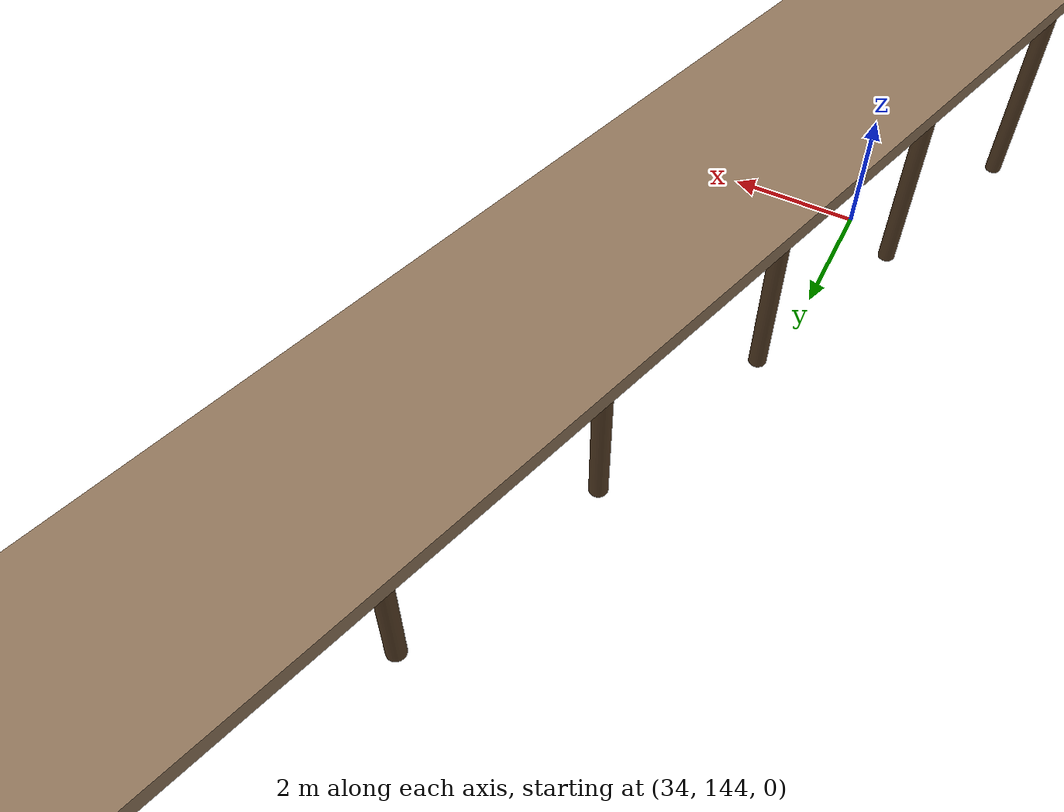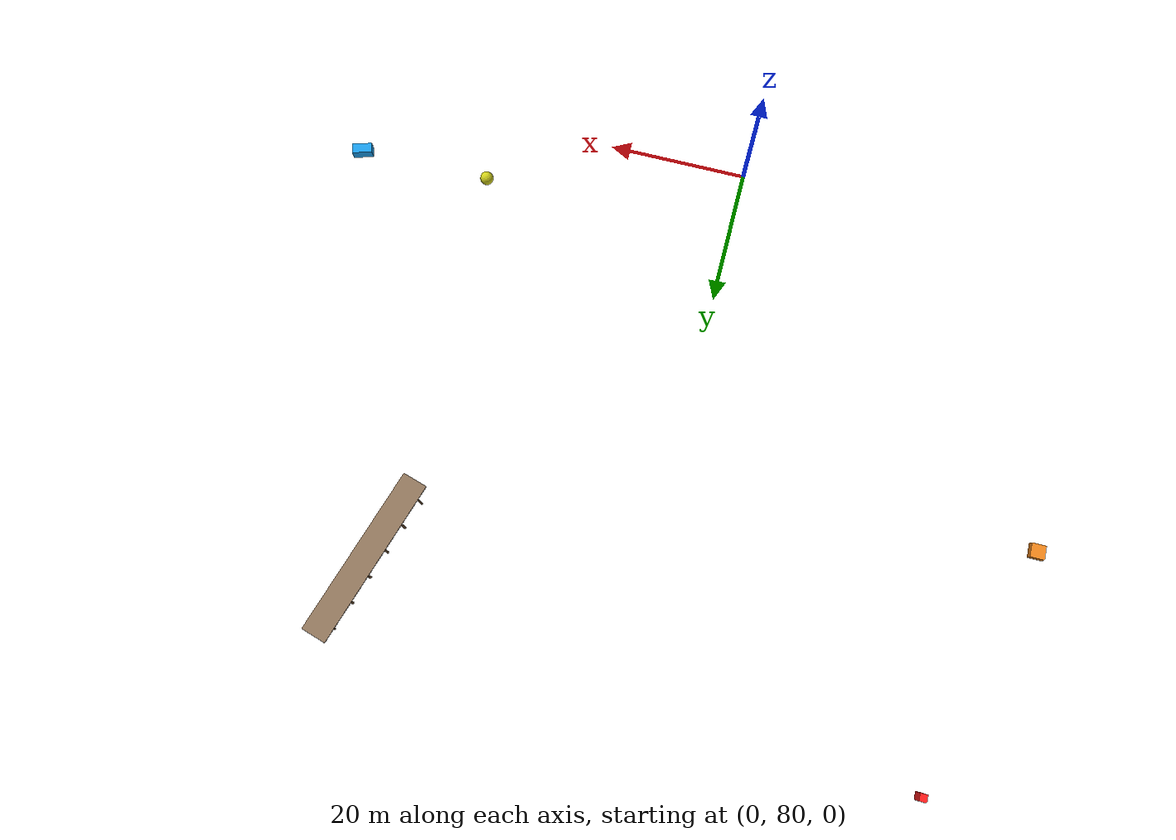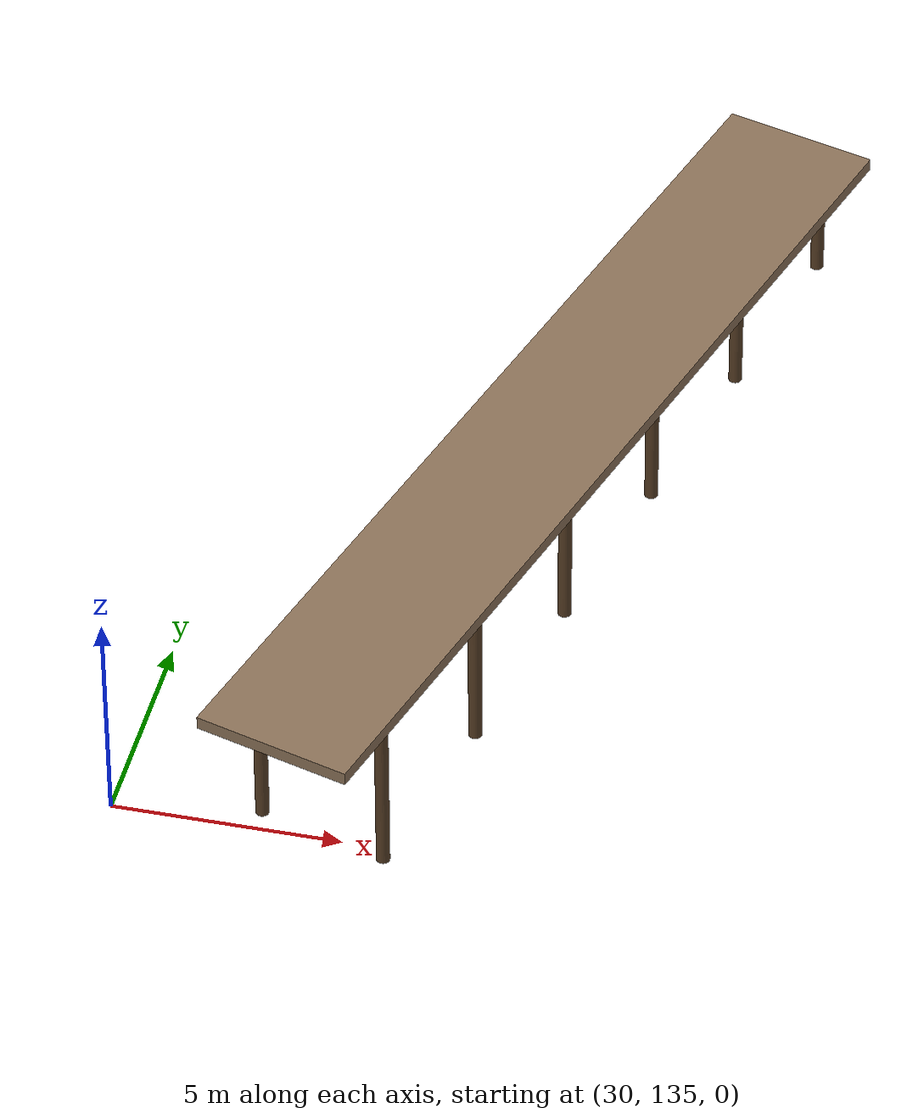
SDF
<sdf version="1.9">
 <world name="claytor_lake_calm">
  <physics name="4ms" type="dart">
   <max_step_size>0.004</max_step_size>
   <real_time_factor>1.0</real_time_factor>
  </physics>
  <plugin filename="gz-sim-physics-system" name="gz::sim::systems::Physics"/>
  <plugin filename="gz-sim-user-commands-system" name="gz::sim::systems::UserCommands"/>
  <plugin filename="gz-sim-sensors-system" name="gz::sim::systems::Sensors">
   <render_engine>ogre2</render_engine>
  </plugin>
  <plugin filename="gz-sim-imu-system" name="gz::sim::systems::Imu"/>
  <plugin filename="gz-sim-magnetometer-system" name="gz::sim::systems::Magnetometer"/>
  <plugin filename="gz-sim-forcetorque-system" name="gz::sim::systems::ForceTorque"/>
  <plugin filename="gz-sim-scene-broadcaster-system" name="gz::sim::systems::SceneBroadcaster"/>
  <plugin filename="gz-sim-contact-system" name="gz::sim::systems::Contact"/>
  <plugin filename="gz-sim-navsat-system" name="gz::sim::systems::NavSat"/>
  <scene><grid>false</grid><ambient>1.0 1.0 1.0</ambient><background>0.8 0.8 0.8</background></scene>
  <spherical_coordinates>
   <surface_model>EARTH_WGS84</surface_model>
   <world_frame_orientation>ENU</world_frame_orientation>
   <latitude_deg>37.0580000</latitude_deg>
   <longitude_deg>-80.6260000</longitude_deg>
   <elevation>257.90</elevation>
   <heading_deg>0.0</heading_deg>
  </spherical_coordinates>
  <light type="directional" name="sun">
   <pose>0 0 10 0 0 0</pose>
   <diffuse>0.8 0.8 0.8 1</diffuse>
   <specular>0.2 0.2 0.2 1</specular>
   <attenuation>
    <range>1000</range>
    <constant>0.9</constant>
    <linear>0.01</linear>
    <quadratic>0.001</quadratic>
   </attenuation>
   <direction>-0.5 0.1 -0.9</direction>
  </light>
  <model name="gt_box_0">
   <static>true</static>
   <pose>-51.000 124.000 -2.579 0 0 0.0000</pose>
   <link name="link">
    <visual name="visual">
     <geometry><box><size>2 2 1</size></box></geometry>
     <material><ambient>0.9 0.5 0.1 1</ambient><diffuse>0.9 0.5 0.1 1</diffuse></material>
    </visual>
    <collision name="collision"><geometry><box><size>2 2 1</size></box></geometry></collision>
   </link>
  </model>
  <model name="gt_box_1">
   <static>true</static>
   <pose>-20.000 -113.000 -5.432 0 0 0.5000</pose>
   <link name="link">
    <visual name="visual">
     <geometry><box><size>2 2 1</size></box></geometry>
     <material><ambient>0.9 0.5 0.1 1</ambient><diffuse>0.9 0.5 0.1 1</diffuse></material>
    </visual>
    <collision name="collision"><geometry><box><size>2 2 1</size></box></geometry></collision>
   </link>
  </model>
  <model name="gt_box_2">
   <static>true</static>
   <pose>-115.000 -13.000 -9.430 0 0 1.0000</pose>
   <link name="link">
    <visual name="visual">
     <geometry><box><size>2 2 1</size></box></geometry>
     <material><ambient>0.9 0.5 0.1 1</ambient><diffuse>0.9 0.5 0.1 1</diffuse></material>
    </visual>
    <collision name="collision"><geometry><box><size>2 2 1</size></box></geometry></collision>
   </link>
  </model>
  <model name="gt_sphere">
   <static>true</static>
   <pose>38.000 87.000 -5.000 0 0 0.0000</pose>
   <link name="link">
    <visual name="visual">
     <geometry><sphere><radius>1.0</radius></sphere></geometry>
     <material><ambient>0.8 0.8 0.1 1</ambient><diffuse>0.8 0.8 0.1 1</diffuse></material>
    </visual>
    <collision name="collision"><geometry><sphere><radius>1.0</radius></sphere></geometry></collision>
   </link>
  </model>
  <model name="gt_box_flat">
   <static>true</static>
   <pose>58.000 87.000 -5.250 0 0 0.3000</pose>
   <link name="link">
    <visual name="visual">
     <geometry><box><size>3 1.5 1.5</size></box></geometry>
     <material><ambient>0.1 0.6 0.9 1</ambient><diffuse>0.1 0.6 0.9 1</diffuse></material>
    </visual>
    <collision name="collision"><geometry><box><size>3 1.5 1.5</size></box></geometry></collision>
   </link>
  </model>
  <model name="gt_piling_0_l">
   <static>true</static>
   <pose>37.997 157.504 0.429 0 0 0.0000</pose>
   <link name="link">
    <visual name="visual">
     <geometry><cylinder><radius>0.15</radius><length>1.5411443203277426</length></cylinder></geometry>
     <material><ambient>0.35 0.25 0.15 1</ambient><diffuse>0.35 0.25 0.15 1</diffuse></material>
    </visual>
    <collision name="collision">
     <geometry><cylinder><radius>0.15</radius><length>1.5411443203277426</length></cylinder></geometry>
    </collision>
   </link>
  </model>
  <model name="gt_piling_0_r">
   <static>true</static>
   <pose>40.876 156.658 0.419 0 0 0.0000</pose>
   <link name="link">
    <visual name="visual">
     <geometry><cylinder><radius>0.15</radius><length>1.5617021328802991</length></cylinder></geometry>
     <material><ambient>0.35 0.25 0.15 1</ambient><diffuse>0.35 0.25 0.15 1</diffuse></material>
    </visual>
    <collision name="collision">
     <geometry><cylinder><radius>0.15</radius><length>1.5617021328802991</length></cylinder></geometry>
    </collision>
   </link>
  </model>
  <model name="gt_piling_1_l">
   <static>true</static>
   <pose>36.870 153.666 0.171 0 0 0.0000</pose>
   <link name="link">
    <visual name="visual">
     <geometry><cylinder><radius>0.15</radius><length>2.057733083238276</length></cylinder></geometry>
     <material><ambient>0.35 0.25 0.15 1</ambient><diffuse>0.35 0.25 0.15 1</diffuse></material>
    </visual>
    <collision name="collision">
     <geometry><cylinder><radius>0.15</radius><length>2.057733083238276</length></cylinder></geometry>
    </collision>
   </link>
  </model>
  <model name="gt_piling_1_r">
   <static>true</static>
   <pose>39.748 152.820 0.164 0 0 0.0000</pose>
   <link name="link">
    <visual name="visual">
     <geometry><cylinder><radius>0.15</radius><length>2.0728583774334615</length></cylinder></geometry>
     <material><ambient>0.35 0.25 0.15 1</ambient><diffuse>0.35 0.25 0.15 1</diffuse></material>
    </visual>
    <collision name="collision">
     <geometry><cylinder><radius>0.15</radius><length>2.0728583774334615</length></cylinder></geometry>
    </collision>
   </link>
  </model>
  <model name="gt_piling_2_l">
   <static>true</static>
   <pose>35.743 149.828 -0.074 0 0 0.0000</pose>
   <link name="link">
    <visual name="visual">
     <geometry><cylinder><radius>0.15</radius><length>2.5481727865338453</length></cylinder></geometry>
     <material><ambient>0.35 0.25 0.15 1</ambient><diffuse>0.35 0.25 0.15 1</diffuse></material>
    </visual>
    <collision name="collision">
     <geometry><cylinder><radius>0.15</radius><length>2.5481727865338453</length></cylinder></geometry>
    </collision>
   </link>
  </model>
  <model name="gt_piling_2_r">
   <static>true</static>
   <pose>38.621 148.983 -0.081 0 0 0.0000</pose>
   <link name="link">
    <visual name="visual">
     <geometry><cylinder><radius>0.15</radius><length>2.562955945279675</length></cylinder></geometry>
     <material><ambient>0.35 0.25 0.15 1</ambient><diffuse>0.35 0.25 0.15 1</diffuse></material>
    </visual>
    <collision name="collision">
     <geometry><cylinder><radius>0.15</radius><length>2.562955945279675</length></cylinder></geometry>
    </collision>
   </link>
  </model>
  <model name="gt_piling_3_l">
   <static>true</static>
   <pose>34.616 145.990 -0.309 0 0 0.0000</pose>
   <link name="link">
    <visual name="visual">
     <geometry><cylinder><radius>0.15</radius><length>3.0170494817277933</length></cylinder></geometry>
     <material><ambient>0.35 0.25 0.15 1</ambient><diffuse>0.35 0.25 0.15 1</diffuse></material>
    </visual>
    <collision name="collision">
     <geometry><cylinder><radius>0.15</radius><length>3.0170494817277933</length></cylinder></geometry>
    </collision>
   </link>
  </model>
  <model name="gt_piling_3_r">
   <static>true</static>
   <pose>37.494 145.145 -0.315 0 0 0.0000</pose>
   <link name="link">
    <visual name="visual">
     <geometry><cylinder><radius>0.15</radius><length>3.0309860885194846</length></cylinder></geometry>
     <material><ambient>0.35 0.25 0.15 1</ambient><diffuse>0.35 0.25 0.15 1</diffuse></material>
    </visual>
    <collision name="collision">
     <geometry><cylinder><radius>0.15</radius><length>3.0309860885194846</length></cylinder></geometry>
    </collision>
   </link>
  </model>
  <model name="gt_piling_4_l">
   <static>true</static>
   <pose>33.488 142.152 -0.532 0 0 0.0000</pose>
   <link name="link">
    <visual name="visual">
     <geometry><cylinder><radius>0.15</radius><length>3.4637157183470313</length></cylinder></geometry>
     <material><ambient>0.35 0.25 0.15 1</ambient><diffuse>0.35 0.25 0.15 1</diffuse></material>
    </visual>
    <collision name="collision">
     <geometry><cylinder><radius>0.15</radius><length>3.4637157183470313</length></cylinder></geometry>
    </collision>
   </link>
  </model>
  <model name="gt_piling_4_r">
   <static>true</static>
   <pose>36.367 141.307 -0.538 0 0 0.0000</pose>
   <link name="link">
    <visual name="visual">
     <geometry><cylinder><radius>0.15</radius><length>3.476851443561624</length></cylinder></geometry>
     <material><ambient>0.35 0.25 0.15 1</ambient><diffuse>0.35 0.25 0.15 1</diffuse></material>
    </visual>
    <collision name="collision">
     <geometry><cylinder><radius>0.15</radius><length>3.476851443561624</length></cylinder></geometry>
    </collision>
   </link>
  </model>
  <model name="gt_piling_5_l">
   <static>true</static>
   <pose>32.361 138.314 -0.744 0 0 0.0000</pose>
   <link name="link">
    <visual name="visual">
     <geometry><cylinder><radius>0.15</radius><length>3.888970107875801</length></cylinder></geometry>
     <material><ambient>0.35 0.25 0.15 1</ambient><diffuse>0.35 0.25 0.15 1</diffuse></material>
    </visual>
    <collision name="collision">
     <geometry><cylinder><radius>0.15</radius><length>3.888970107875801</length></cylinder></geometry>
    </collision>
   </link>
  </model>
  <model name="gt_piling_5_r">
   <static>true</static>
   <pose>35.240 137.469 -0.751 0 0 0.0000</pose>
   <link name="link">
    <visual name="visual">
     <geometry><cylinder><radius>0.15</radius><length>3.901413106039411</length></cylinder></geometry>
     <material><ambient>0.35 0.25 0.15 1</ambient><diffuse>0.35 0.25 0.15 1</diffuse></material>
    </visual>
    <collision name="collision">
     <geometry><cylinder><radius>0.15</radius><length>3.901413106039411</length></cylinder></geometry>
    </collision>
   </link>
  </model>
  <model name="gt_pier_deck">
   <static>true</static>
   <pose>36.618 147.486 1.350 0 0 -1.8565</pose>
   <link name="link">
    <visual name="visual">
     <geometry><box><size>24.0 3.6 0.3</size></box></geometry>
     <material><ambient>0.55 0.45 0.35 1</ambient><diffuse>0.55 0.45 0.35 1</diffuse></material>
    </visual>
    <collision name="collision"><geometry><box><size>24.0 3.6 0.3</size></box></geometry></collision>
   </link>
  </model>
  <model name="gt_landmark_0">
   <static>true</static>
   <pose>-39.000 159.000 3.873 0 0 0.0000</pose>
   <link name="link">
    <visual name="visual">
     <geometry><box><size>1 1 2</size></box></geometry>
     <material><ambient>0.95 0.1 0.1 1</ambient><diffuse>0.95 0.1 0.1 1</diffuse></material>
    </visual>
    <collision name="collision"><geometry><box><size>1 1 2</size></box></geometry></collision>
   </link>
  </model>
  <model name="gt_landmark_1">
   <static>true</static>
   <pose>206.000 -56.000 3.967 0 0 0.0000</pose>
   <link name="link">
    <visual name="visual">
     <geometry><box><size>1 1 2</size></box></geometry>
     <material><ambient>0.95 0.1 0.1 1</ambient><diffuse>0.95 0.1 0.1 1</diffuse></material>
    </visual>
    <collision name="collision"><geometry><box><size>1 1 2</size></box></geometry></collision>
   </link>
  </model>
  <model name="gt_landmark_2">
   <static>true</static>
   <pose>-20.000 -200.000 3.997 0 0 0.0000</pose>
   <link name="link">
    <visual name="visual">
     <geometry><box><size>1 1 2</size></box></geometry>
     <material><ambient>0.95 0.1 0.1 1</ambient><diffuse>0.95 0.1 0.1 1</diffuse></material>
    </visual>
    <collision name="collision"><geometry><box><size>1 1 2</size></box></geometry></collision>
   </link>
  </model>
  <model name="gt_landmark_3">
   <static>true</static>
   <pose>-258.000 80.000 3.947 0 0 0.0000</pose>
   <link name="link">
    <visual name="visual">
     <geometry><box><size>1 1 2</size></box></geometry>
     <material><ambient>0.95 0.1 0.1 1</ambient><diffuse>0.95 0.1 0.1 1</diffuse></material>
    </visual>
    <collision name="collision"><geometry><box><size>1 1 2</size></box></geometry></collision>
   </link>
  </model>
  <plugin filename="libUSVWind.so" name="vrx::USVWind">
   <wind_obj>
    <name>wamv</name>
    <link_name>wamv/base_link</link_name>
    <coeff_vector>.5 .5 .33</coeff_vector>
   </wind_obj>
   <wind_direction>0.0</wind_direction>
   <wind_mean_velocity>0.0</wind_mean_velocity>
   <var_wind_gain_constants>0</var_wind_gain_constants>
   <var_wind_time_constants>2</var_wind_time_constants>
   <random_seed>10</random_seed>
   <update_rate>10</update_rate>
   <topic_wind_speed>/vrx/debug/wind/speed</topic_wind_speed>
   <topic_wind_direction>/vrx/debug/wind/direction</topic_wind_direction>
  </plugin>
  <plugin filename="libPublisherPlugin.so" name="vrx::PublisherPlugin">
   <message type="gz.msgs.Param" topic="/vrx/wavefield/parameters" every="2.0">params {
          key: "direction"
          value { type: DOUBLE double_value: 0.000000 }
        }
        params {
          key: "gain"
          value { type: DOUBLE double_value: 0.000000 }
        }
        params {
          key: "period"
          value { type: DOUBLE double_value: 3.000000 }
        }
        params {
          key: "steepness"
          value { type: DOUBLE double_value: 0.000000 }
        }</message>
  </plugin>
 </world>
</sdf>
